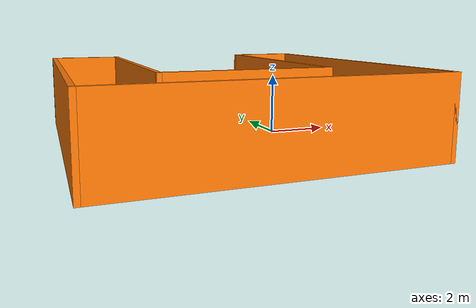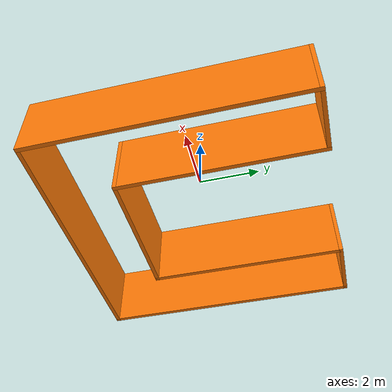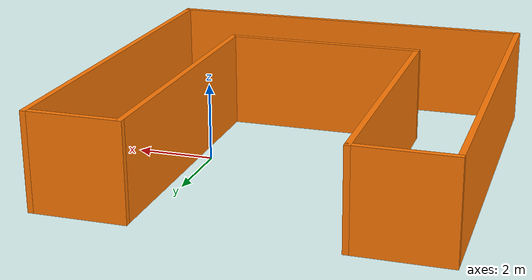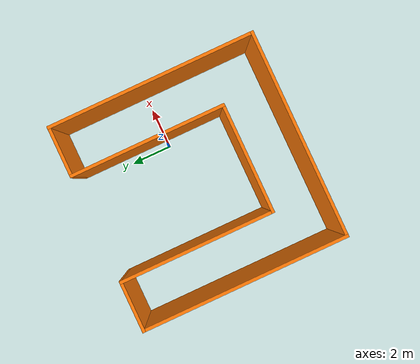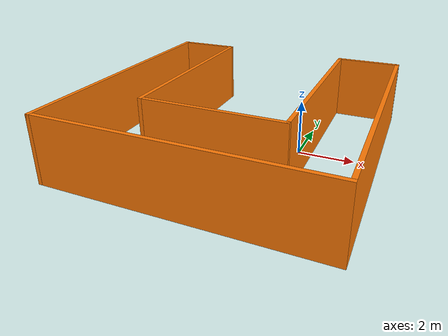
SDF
<?xml version='1.0'?>
<sdf version='1.6'>
  <model name='uworld_builder'>
    <pose frame=''>-2.17673 -0.535394 0 0 -0 0</pose>
    <link name='Wall_10'>
      <collision name='Wall_10_Collision'>
        <geometry>
          <box>
            <size>7.5 0.15 2.5</size>
          </box>
        </geometry>
        <pose frame=''>0 0 1.25 0 -0 0</pose>
      </collision>
      <visual name='Wall_10_Visual'>
        <pose frame=''>0 0 1.25 0 -0 0</pose>
        <geometry>
          <box>
            <size>7.5 0.15 2.5</size>
          </box>
        </geometry>
        <material>
          <script>
            <uri>file://media/materials/scripts/gazebo.material</uri>
            <name>Gazebo/Grey</name>
          </script>
          <ambient>0.996078 0.47451 0.0196078 1</ambient>
        </material>
      </visual>
      <pose frame=''>2.575 1.25 0 0 0 -1.5708</pose>
    </link>
    <link name='Wall_11'>
      <collision name='Wall_11_Collision'>
        <geometry>
          <box>
            <size>5.3 0.15 2.5</size>
          </box>
        </geometry>
        <pose frame=''>0 0 1.25 0 -0 0</pose>
      </collision>
      <visual name='Wall_11_Visual'>
        <pose frame=''>0 0 1.25 0 -0 0</pose>
        <geometry>
          <box>
            <size>5.3 0.15 2.5</size>
          </box>
        </geometry>
        <material>
          <script>
            <uri>file://media/materials/scripts/gazebo.material</uri>
            <name>Gazebo/Grey</name>
          </script>
          <ambient>0.996078 0.47451 0.0196078 1</ambient>
        </material>
      </visual>
      <pose frame=''>0 -2.425 0 0 -0 3.14159</pose>
    </link>
    <link name='Wall_4'>
      <collision name='Wall_4_Collision'>
        <geometry>
          <box>
            <size>7.5 0.15 2.5</size>
          </box>
        </geometry>
        <pose frame=''>0 0 1.25 0 -0 0</pose>
      </collision>
      <visual name='Wall_4_Visual'>
        <pose frame=''>0 0 1.25 0 -0 0</pose>
        <geometry>
          <box>
            <size>7.5 0.15 2.5</size>
          </box>
        </geometry>
        <material>
          <script>
            <uri>file://media/materials/scripts/gazebo.material</uri>
            <name>Gazebo/Grey</name>
          </script>
          <ambient>0.996078 0.47451 0.0196078 1</ambient>
        </material>
      </visual>
      <pose frame=''>-2.575 1.25 0 0 -0 1.5708</pose>
    </link>
    <link name='Wall_5'>
      <collision name='Wall_5_Collision'>
        <geometry>
          <box>
            <size>2.5 0.15 2.5</size>
          </box>
        </geometry>
        <pose frame=''>0 0 1.25 0 -0 0</pose>
      </collision>
      <visual name='Wall_5_Visual'>
        <pose frame=''>0 0 1.25 0 -0 0</pose>
        <geometry>
          <box>
            <size>2.5 0.15 2.5</size>
          </box>
        </geometry>
        <material>
          <script>
            <uri>file://media/materials/scripts/gazebo.material</uri>
            <name>Gazebo/Grey</name>
          </script>
          <ambient>0.996078 0.47451 0.0196078 1</ambient>
        </material>
      </visual>
      <pose frame=''>-3.75 4.925 0 0 -0 3.14159</pose>
    </link>
    <link name='Wall_6'>
      <collision name='Wall_6_Collision'>
        <geometry>
          <box>
            <size>10 0.15 2.5</size>
          </box>
        </geometry>
        <pose frame=''>0 0 1.25 0 -0 0</pose>
      </collision>
      <visual name='Wall_6_Visual'>
        <pose frame=''>0 0 1.25 0 -0 0</pose>
        <geometry>
          <box>
            <size>10 0.15 2.5</size>
          </box>
        </geometry>
        <material>
          <script>
            <uri>file://media/materials/scripts/gazebo.material</uri>
            <name>Gazebo/Grey</name>
          </script>
          <ambient>0.996078 0.47451 0.0196078 1</ambient>
        </material>
      </visual>
      <pose frame=''>-4.925 0 0 0 0 -1.5708</pose>
    </link>
    <link name='Wall_7'>
      <collision name='Wall_7_Collision'>
        <geometry>
          <box>
            <size>10 0.15 2.5</size>
          </box>
        </geometry>
        <pose frame=''>0 0 1.25 0 -0 0</pose>
      </collision>
      <visual name='Wall_7_Visual'>
        <pose frame=''>0 0 1.25 0 -0 0</pose>
        <geometry>
          <box>
            <size>10 0.15 2.5</size>
          </box>
        </geometry>
        <material>
          <script>
            <uri>file://media/materials/scripts/gazebo.material</uri>
            <name>Gazebo/Grey</name>
          </script>
          <ambient>0.996078 0.47451 0.0196078 1</ambient>
        </material>
      </visual>
      <pose frame=''>0 -4.925 0 0 -0 0</pose>
    </link>
    <link name='Wall_8'>
      <collision name='Wall_8_Collision'>
        <geometry>
          <box>
            <size>10 0.15 2.5</size>
          </box>
        </geometry>
        <pose frame=''>0 0 1.25 0 -0 0</pose>
      </collision>
      <visual name='Wall_8_Visual'>
        <pose frame=''>0 0 1.25 0 -0 0</pose>
        <geometry>
          <box>
            <size>10 0.15 2.5</size>
          </box>
        </geometry>
        <material>
          <script>
            <uri>file://media/materials/scripts/gazebo.material</uri>
            <name>Gazebo/Grey</name>
          </script>
          <ambient>0.996078 0.47451 0.0196078 1</ambient>
        </material>
      </visual>
      <pose frame=''>4.925 0 0 0 -0 1.5708</pose>
    </link>
    <link name='Wall_9'>
      <collision name='Wall_9_Collision'>
        <geometry>
          <box>
            <size>2.5 0.15 2.5</size>
          </box>
        </geometry>
        <pose frame=''>0 0 1.25 0 -0 0</pose>
      </collision>
      <visual name='Wall_9_Visual'>
        <pose frame=''>0 0 1.25 0 -0 0</pose>
        <geometry>
          <box>
            <size>2.5 0.15 2.5</size>
          </box>
        </geometry>
        <material>
          <script>
            <uri>file://media/materials/scripts/gazebo.material</uri>
            <name>Gazebo/Grey</name>
          </script>
          <ambient>0.996078 0.47451 0.0196078 1</ambient>
        </material>
      </visual>
      <pose frame=''>3.75 4.925 0 0 -0 3.14159</pose>
    </link>
    <static>1</static>
  </model>
</sdf>
